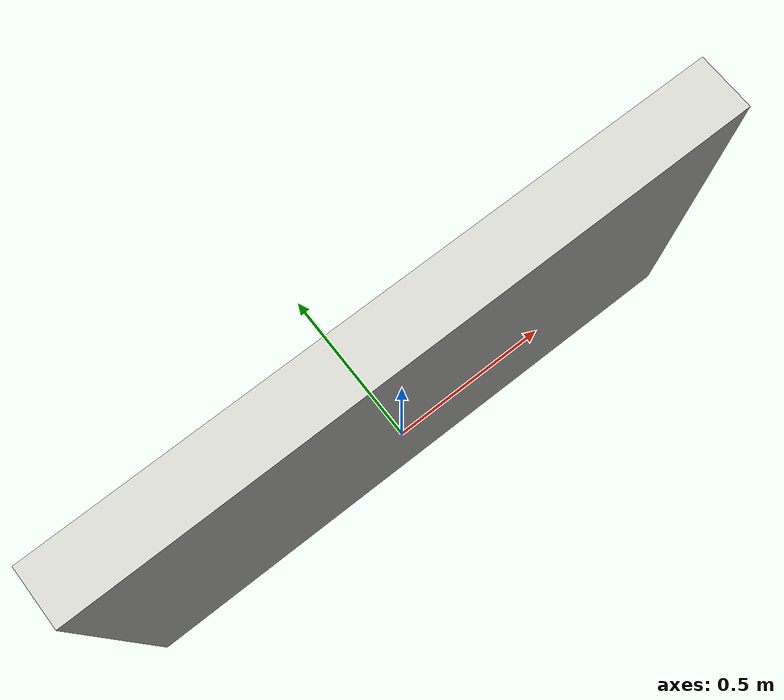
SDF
<?xml version='1.0'?>
<sdf version='1.6'>
  <model name='obstacle_wall_full'>
    <static>1</static>
    <pose frame=''>0 0 0 0 -0 0</pose>
    <link name='Wall'>
      <collision name='Wall_Collision'>
        <geometry>
          <box>
            <size>1.75 0.15 1.0</size>
          </box>
        </geometry>
        <pose frame=''>0 0 0.5 0 -0 0</pose>
      </collision>
      <visual name='Wall_Visual'>
        <pose frame=''>0 0 0.5 0 -0 0</pose>
        <geometry>
          <box>
            <size>1.75 0.15 1.0</size>
          </box>
        </geometry>
        <material>
          <script>
            <uri>file://media/materials/scripts/gazebo.material</uri>
            <name>Gazebo/CeilingTiled</name>
          </script>
          <ambient>1 0.764706 0.305882 1</ambient>
        </material>
      </visual>
      <pose frame=''>0 0 0 0 -0 0</pose>
    </link>
  </model>
</sdf>
